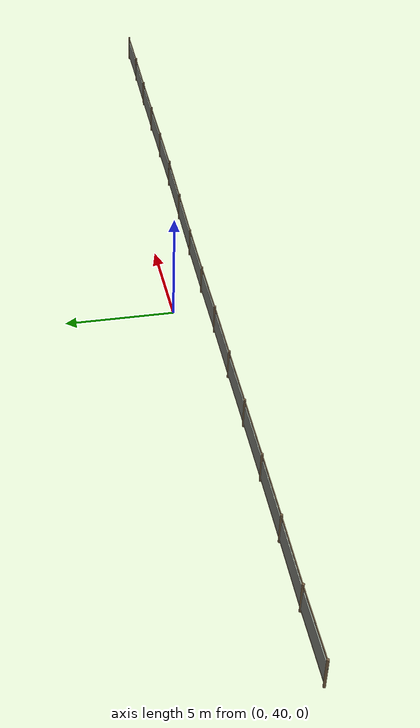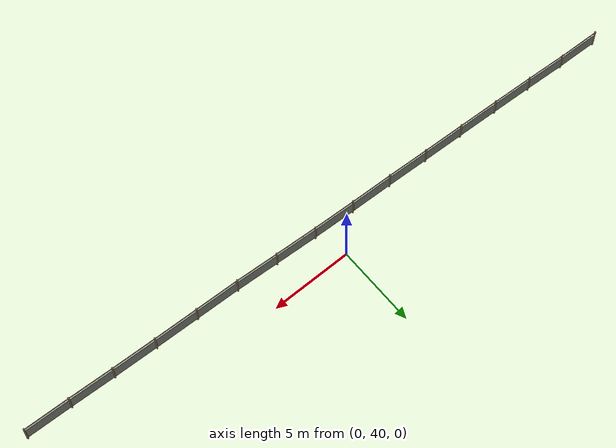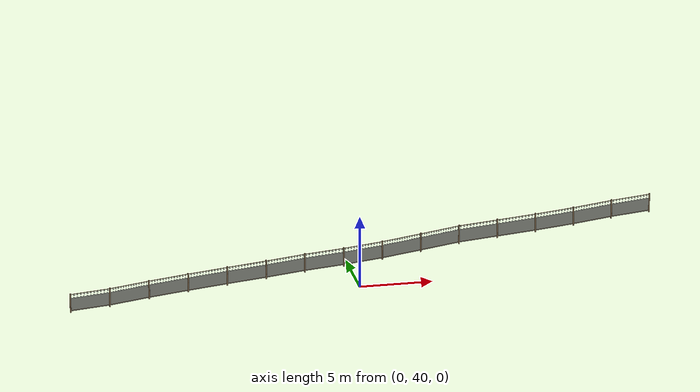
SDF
<sdf version="1.9">
 <world name="orchard_10x41">
  <model name="fence_N">
   <static>true</static>
   <link name="link">
    <visual name="post_1">
     <pose>-19.750 39.000 0.771 0.0000 0.0000 0.0000</pose>
     <geometry><cylinder><radius>0.0500</radius><length>1.3500</length></cylinder></geometry>
     <material>
      <ambient>0.420 0.340 0.240 1</ambient>
      <diffuse>0.462 0.374 0.264 1</diffuse>
      <specular>0.126 0.102 0.072 1</specular>
     </material>
     <plugin filename="gz-sim-label-system" name="gz::sim::systems::Label"><label>60</label></plugin>
    </visual>
    <visual name="post_2">
     <pose>-17.117 39.000 0.981 0.0000 0.0000 0.0000</pose>
     <geometry><cylinder><radius>0.0500</radius><length>1.3500</length></cylinder></geometry>
     <material>
      <ambient>0.420 0.340 0.240 1</ambient>
      <diffuse>0.462 0.374 0.264 1</diffuse>
      <specular>0.126 0.102 0.072 1</specular>
     </material>
     <plugin filename="gz-sim-label-system" name="gz::sim::systems::Label"><label>60</label></plugin>
    </visual>
    <visual name="post_3">
     <pose>-14.483 39.000 1.320 0.0000 0.0000 0.0000</pose>
     <geometry><cylinder><radius>0.0500</radius><length>1.3500</length></cylinder></geometry>
     <material>
      <ambient>0.420 0.340 0.240 1</ambient>
      <diffuse>0.462 0.374 0.264 1</diffuse>
      <specular>0.126 0.102 0.072 1</specular>
     </material>
     <plugin filename="gz-sim-label-system" name="gz::sim::systems::Label"><label>60</label></plugin>
    </visual>
    <visual name="post_4">
     <pose>-11.850 39.000 1.615 0.0000 0.0000 0.0000</pose>
     <geometry><cylinder><radius>0.0500</radius><length>1.3500</length></cylinder></geometry>
     <material>
      <ambient>0.420 0.340 0.240 1</ambient>
      <diffuse>0.462 0.374 0.264 1</diffuse>
      <specular>0.126 0.102 0.072 1</specular>
     </material>
     <plugin filename="gz-sim-label-system" name="gz::sim::systems::Label"><label>60</label></plugin>
    </visual>
    <visual name="post_5">
     <pose>-9.217 39.000 1.884 0.0000 0.0000 0.0000</pose>
     <geometry><cylinder><radius>0.0500</radius><length>1.3500</length></cylinder></geometry>
     <material>
      <ambient>0.420 0.340 0.240 1</ambient>
      <diffuse>0.462 0.374 0.264 1</diffuse>
      <specular>0.126 0.102 0.072 1</specular>
     </material>
     <plugin filename="gz-sim-label-system" name="gz::sim::systems::Label"><label>60</label></plugin>
    </visual>
    <visual name="post_6">
     <pose>-6.583 39.000 2.142 0.0000 0.0000 0.0000</pose>
     <geometry><cylinder><radius>0.0500</radius><length>1.3500</length></cylinder></geometry>
     <material>
      <ambient>0.420 0.340 0.240 1</ambient>
      <diffuse>0.462 0.374 0.264 1</diffuse>
      <specular>0.126 0.102 0.072 1</specular>
     </material>
     <plugin filename="gz-sim-label-system" name="gz::sim::systems::Label"><label>60</label></plugin>
    </visual>
    <visual name="post_7">
     <pose>-3.950 39.000 2.425 0.0000 0.0000 0.0000</pose>
     <geometry><cylinder><radius>0.0500</radius><length>1.3500</length></cylinder></geometry>
     <material>
      <ambient>0.420 0.340 0.240 1</ambient>
      <diffuse>0.462 0.374 0.264 1</diffuse>
      <specular>0.126 0.102 0.072 1</specular>
     </material>
     <plugin filename="gz-sim-label-system" name="gz::sim::systems::Label"><label>60</label></plugin>
    </visual>
    <visual name="post_8">
     <pose>-1.317 39.000 2.643 0.0000 0.0000 0.0000</pose>
     <geometry><cylinder><radius>0.0500</radius><length>1.3500</length></cylinder></geometry>
     <material>
      <ambient>0.420 0.340 0.240 1</ambient>
      <diffuse>0.462 0.374 0.264 1</diffuse>
      <specular>0.126 0.102 0.072 1</specular>
     </material>
     <plugin filename="gz-sim-label-system" name="gz::sim::systems::Label"><label>60</label></plugin>
    </visual>
    <visual name="post_9">
     <pose>1.317 39.000 2.926 0.0000 0.0000 0.0000</pose>
     <geometry><cylinder><radius>0.0500</radius><length>1.3500</length></cylinder></geometry>
     <material>
      <ambient>0.420 0.340 0.240 1</ambient>
      <diffuse>0.462 0.374 0.264 1</diffuse>
      <specular>0.126 0.102 0.072 1</specular>
     </material>
     <plugin filename="gz-sim-label-system" name="gz::sim::systems::Label"><label>60</label></plugin>
    </visual>
    <visual name="post_10">
     <pose>3.950 39.000 3.288 0.0000 0.0000 0.0000</pose>
     <geometry><cylinder><radius>0.0500</radius><length>1.3500</length></cylinder></geometry>
     <material>
      <ambient>0.420 0.340 0.240 1</ambient>
      <diffuse>0.462 0.374 0.264 1</diffuse>
      <specular>0.126 0.102 0.072 1</specular>
     </material>
     <plugin filename="gz-sim-label-system" name="gz::sim::systems::Label"><label>60</label></plugin>
    </visual>
    <visual name="post_11">
     <pose>6.583 39.000 3.663 0.0000 0.0000 0.0000</pose>
     <geometry><cylinder><radius>0.0500</radius><length>1.3500</length></cylinder></geometry>
     <material>
      <ambient>0.420 0.340 0.240 1</ambient>
      <diffuse>0.462 0.374 0.264 1</diffuse>
      <specular>0.126 0.102 0.072 1</specular>
     </material>
     <plugin filename="gz-sim-label-system" name="gz::sim::systems::Label"><label>60</label></plugin>
    </visual>
    <visual name="post_12">
     <pose>9.217 39.000 3.890 0.0000 0.0000 0.0000</pose>
     <geometry><cylinder><radius>0.0500</radius><length>1.3500</length></cylinder></geometry>
     <material>
      <ambient>0.420 0.340 0.240 1</ambient>
      <diffuse>0.462 0.374 0.264 1</diffuse>
      <specular>0.126 0.102 0.072 1</specular>
     </material>
     <plugin filename="gz-sim-label-system" name="gz::sim::systems::Label"><label>60</label></plugin>
    </visual>
    <visual name="post_13">
     <pose>11.850 39.000 4.118 0.0000 0.0000 0.0000</pose>
     <geometry><cylinder><radius>0.0500</radius><length>1.3500</length></cylinder></geometry>
     <material>
      <ambient>0.420 0.340 0.240 1</ambient>
      <diffuse>0.462 0.374 0.264 1</diffuse>
      <specular>0.126 0.102 0.072 1</specular>
     </material>
     <plugin filename="gz-sim-label-system" name="gz::sim::systems::Label"><label>60</label></plugin>
    </visual>
    <visual name="post_14">
     <pose>14.483 39.000 4.386 0.0000 0.0000 0.0000</pose>
     <geometry><cylinder><radius>0.0500</radius><length>1.3500</length></cylinder></geometry>
     <material>
      <ambient>0.420 0.340 0.240 1</ambient>
      <diffuse>0.462 0.374 0.264 1</diffuse>
      <specular>0.126 0.102 0.072 1</specular>
     </material>
     <plugin filename="gz-sim-label-system" name="gz::sim::systems::Label"><label>60</label></plugin>
    </visual>
    <visual name="post_15">
     <pose>17.117 39.000 4.710 0.0000 0.0000 0.0000</pose>
     <geometry><cylinder><radius>0.0500</radius><length>1.3500</length></cylinder></geometry>
     <material>
      <ambient>0.420 0.340 0.240 1</ambient>
      <diffuse>0.462 0.374 0.264 1</diffuse>
      <specular>0.126 0.102 0.072 1</specular>
     </material>
     <plugin filename="gz-sim-label-system" name="gz::sim::systems::Label"><label>60</label></plugin>
    </visual>
    <visual name="post_16">
     <pose>19.750 39.000 4.969 0.0000 0.0000 0.0000</pose>
     <geometry><cylinder><radius>0.0500</radius><length>1.3500</length></cylinder></geometry>
     <material>
      <ambient>0.420 0.340 0.240 1</ambient>
      <diffuse>0.462 0.374 0.264 1</diffuse>
      <specular>0.126 0.102 0.072 1</specular>
     </material>
     <plugin filename="gz-sim-label-system" name="gz::sim::systems::Label"><label>60</label></plugin>
    </visual>
    <visual name="mesh_17">
     <pose>-18.433 39.000 0.751 0.0000 -0.0799 0.0000</pose>
     <geometry><box><size>2.6860 0.0200 0.9000</size></box></geometry>
     <material>
      <ambient>0.460 0.470 0.440 1</ambient>
      <diffuse>0.506 0.517 0.484 1</diffuse>
      <specular>0.138 0.141 0.132 1</specular>
     </material>
     <plugin filename="gz-sim-label-system" name="gz::sim::systems::Label"><label>60</label></plugin>
    </visual>
    <visual name="rail_18">
     <pose>-18.433 39.000 0.351 0.0000 -0.0799 0.0000</pose>
     <geometry><box><size>2.6860 0.0350 0.0350</size></box></geometry>
     <material>
      <ambient>0.380 0.310 0.220 1</ambient>
      <diffuse>0.418 0.341 0.242 1</diffuse>
      <specular>0.114 0.093 0.066 1</specular>
     </material>
     <plugin filename="gz-sim-label-system" name="gz::sim::systems::Label"><label>60</label></plugin>
    </visual>
    <visual name="rail_19">
     <pose>-18.433 39.000 1.481 0.0000 -0.0799 0.0000</pose>
     <geometry><box><size>2.6860 0.0350 0.0350</size></box></geometry>
     <material>
      <ambient>0.380 0.310 0.220 1</ambient>
      <diffuse>0.418 0.341 0.242 1</diffuse>
      <specular>0.114 0.093 0.066 1</specular>
     </material>
     <plugin filename="gz-sim-label-system" name="gz::sim::systems::Label"><label>60</label></plugin>
    </visual>
    <visual name="wire_20">
     <pose>-18.433 39.000 1.251 0.0000 -0.0799 0.0000</pose>
     <geometry><box><size>2.6860 0.0120 0.0120</size></box></geometry>
     <material>
      <ambient>0.300 0.300 0.320 1</ambient>
      <diffuse>0.330 0.330 0.352 1</diffuse>
      <specular>0.090 0.090 0.096 1</specular>
     </material>
     <plugin filename="gz-sim-label-system" name="gz::sim::systems::Label"><label>60</label></plugin>
    </visual>
    <visual name="wire_21">
     <pose>-18.433 39.000 1.391 0.0000 -0.0799 0.0000</pose>
     <geometry><box><size>2.6860 0.0120 0.0120</size></box></geometry>
     <material>
      <ambient>0.300 0.300 0.320 1</ambient>
      <diffuse>0.330 0.330 0.352 1</diffuse>
      <specular>0.090 0.090 0.096 1</specular>
     </material>
     <plugin filename="gz-sim-label-system" name="gz::sim::systems::Label"><label>60</label></plugin>
    </visual>
    <visual name="mesh_22">
     <pose>-15.800 39.000 1.026 0.0000 -0.1278 0.0000</pose>
     <geometry><box><size>2.6860 0.0200 0.9000</size></box></geometry>
     <material>
      <ambient>0.460 0.470 0.440 1</ambient>
      <diffuse>0.506 0.517 0.484 1</diffuse>
      <specular>0.138 0.141 0.132 1</specular>
     </material>
     <plugin filename="gz-sim-label-system" name="gz::sim::systems::Label"><label>60</label></plugin>
    </visual>
    <visual name="rail_23">
     <pose>-15.800 39.000 0.626 0.0000 -0.1278 0.0000</pose>
     <geometry><box><size>2.6860 0.0350 0.0350</size></box></geometry>
     <material>
      <ambient>0.380 0.310 0.220 1</ambient>
      <diffuse>0.418 0.341 0.242 1</diffuse>
      <specular>0.114 0.093 0.066 1</specular>
     </material>
     <plugin filename="gz-sim-label-system" name="gz::sim::systems::Label"><label>60</label></plugin>
    </visual>
    <visual name="rail_24">
     <pose>-15.800 39.000 1.756 0.0000 -0.1278 0.0000</pose>
     <geometry><box><size>2.6860 0.0350 0.0350</size></box></geometry>
     <material>
      <ambient>0.380 0.310 0.220 1</ambient>
      <diffuse>0.418 0.341 0.242 1</diffuse>
      <specular>0.114 0.093 0.066 1</specular>
     </material>
     <plugin filename="gz-sim-label-system" name="gz::sim::systems::Label"><label>60</label></plugin>
    </visual>
    <visual name="wire_25">
     <pose>-15.800 39.000 1.526 0.0000 -0.1278 0.0000</pose>
     <geometry><box><size>2.6860 0.0120 0.0120</size></box></geometry>
     <material>
      <ambient>0.300 0.300 0.320 1</ambient>
      <diffuse>0.330 0.330 0.352 1</diffuse>
      <specular>0.090 0.090 0.096 1</specular>
     </material>
     <plugin filename="gz-sim-label-system" name="gz::sim::systems::Label"><label>60</label></plugin>
    </visual>
    <visual name="wire_26">
     <pose>-15.800 39.000 1.666 0.0000 -0.1278 0.0000</pose>
     <geometry><box><size>2.6860 0.0120 0.0120</size></box></geometry>
     <material>
      <ambient>0.300 0.300 0.320 1</ambient>
      <diffuse>0.330 0.330 0.352 1</diffuse>
      <specular>0.090 0.090 0.096 1</specular>
     </material>
     <plugin filename="gz-sim-label-system" name="gz::sim::systems::Label"><label>60</label></plugin>
    </visual>
    <visual name="mesh_27">
     <pose>-13.167 39.000 1.343 0.0000 -0.1117 0.0000</pose>
     <geometry><box><size>2.6860 0.0200 0.9000</size></box></geometry>
     <material>
      <ambient>0.460 0.470 0.440 1</ambient>
      <diffuse>0.506 0.517 0.484 1</diffuse>
      <specular>0.138 0.141 0.132 1</specular>
     </material>
     <plugin filename="gz-sim-label-system" name="gz::sim::systems::Label"><label>60</label></plugin>
    </visual>
    <visual name="rail_28">
     <pose>-13.167 39.000 0.943 0.0000 -0.1117 0.0000</pose>
     <geometry><box><size>2.6860 0.0350 0.0350</size></box></geometry>
     <material>
      <ambient>0.380 0.310 0.220 1</ambient>
      <diffuse>0.418 0.341 0.242 1</diffuse>
      <specular>0.114 0.093 0.066 1</specular>
     </material>
     <plugin filename="gz-sim-label-system" name="gz::sim::systems::Label"><label>60</label></plugin>
    </visual>
    <visual name="rail_29">
     <pose>-13.167 39.000 2.073 0.0000 -0.1117 0.0000</pose>
     <geometry><box><size>2.6860 0.0350 0.0350</size></box></geometry>
     <material>
      <ambient>0.380 0.310 0.220 1</ambient>
      <diffuse>0.418 0.341 0.242 1</diffuse>
      <specular>0.114 0.093 0.066 1</specular>
     </material>
     <plugin filename="gz-sim-label-system" name="gz::sim::systems::Label"><label>60</label></plugin>
    </visual>
    <visual name="wire_30">
     <pose>-13.167 39.000 1.843 0.0000 -0.1117 0.0000</pose>
     <geometry><box><size>2.6860 0.0120 0.0120</size></box></geometry>
     <material>
      <ambient>0.300 0.300 0.320 1</ambient>
      <diffuse>0.330 0.330 0.352 1</diffuse>
      <specular>0.090 0.090 0.096 1</specular>
     </material>
     <plugin filename="gz-sim-label-system" name="gz::sim::systems::Label"><label>60</label></plugin>
    </visual>
    <visual name="wire_31">
     <pose>-13.167 39.000 1.983 0.0000 -0.1117 0.0000</pose>
     <geometry><box><size>2.6860 0.0120 0.0120</size></box></geometry>
     <material>
      <ambient>0.300 0.300 0.320 1</ambient>
      <diffuse>0.330 0.330 0.352 1</diffuse>
      <specular>0.090 0.090 0.096 1</specular>
     </material>
     <plugin filename="gz-sim-label-system" name="gz::sim::systems::Label"><label>60</label></plugin>
    </visual>
    <visual name="mesh_32">
     <pose>-10.533 39.000 1.625 0.0000 -0.1019 0.0000</pose>
     <geometry><box><size>2.6860 0.0200 0.9000</size></box></geometry>
     <material>
      <ambient>0.460 0.470 0.440 1</ambient>
      <diffuse>0.506 0.517 0.484 1</diffuse>
      <specular>0.138 0.141 0.132 1</specular>
     </material>
     <plugin filename="gz-sim-label-system" name="gz::sim::systems::Label"><label>60</label></plugin>
    </visual>
    <visual name="rail_33">
     <pose>-10.533 39.000 1.225 0.0000 -0.1019 0.0000</pose>
     <geometry><box><size>2.6860 0.0350 0.0350</size></box></geometry>
     <material>
      <ambient>0.380 0.310 0.220 1</ambient>
      <diffuse>0.418 0.341 0.242 1</diffuse>
      <specular>0.114 0.093 0.066 1</specular>
     </material>
     <plugin filename="gz-sim-label-system" name="gz::sim::systems::Label"><label>60</label></plugin>
    </visual>
    <visual name="rail_34">
     <pose>-10.533 39.000 2.355 0.0000 -0.1019 0.0000</pose>
     <geometry><box><size>2.6860 0.0350 0.0350</size></box></geometry>
     <material>
      <ambient>0.380 0.310 0.220 1</ambient>
      <diffuse>0.418 0.341 0.242 1</diffuse>
      <specular>0.114 0.093 0.066 1</specular>
     </material>
     <plugin filename="gz-sim-label-system" name="gz::sim::systems::Label"><label>60</label></plugin>
    </visual>
    <visual name="wire_35">
     <pose>-10.533 39.000 2.125 0.0000 -0.1019 0.0000</pose>
     <geometry><box><size>2.6860 0.0120 0.0120</size></box></geometry>
     <material>
      <ambient>0.300 0.300 0.320 1</ambient>
      <diffuse>0.330 0.330 0.352 1</diffuse>
      <specular>0.090 0.090 0.096 1</specular>
     </material>
     <plugin filename="gz-sim-label-system" name="gz::sim::systems::Label"><label>60</label></plugin>
    </visual>
    <visual name="wire_36">
     <pose>-10.533 39.000 2.265 0.0000 -0.1019 0.0000</pose>
     <geometry><box><size>2.6860 0.0120 0.0120</size></box></geometry>
     <material>
      <ambient>0.300 0.300 0.320 1</ambient>
      <diffuse>0.330 0.330 0.352 1</diffuse>
      <specular>0.090 0.090 0.096 1</specular>
     </material>
     <plugin filename="gz-sim-label-system" name="gz::sim::systems::Label"><label>60</label></plugin>
    </visual>
    <visual name="mesh_37">
     <pose>-7.900 39.000 1.888 0.0000 -0.0974 0.0000</pose>
     <geometry><box><size>2.6860 0.0200 0.9000</size></box></geometry>
     <material>
      <ambient>0.460 0.470 0.440 1</ambient>
      <diffuse>0.506 0.517 0.484 1</diffuse>
      <specular>0.138 0.141 0.132 1</specular>
     </material>
     <plugin filename="gz-sim-label-system" name="gz::sim::systems::Label"><label>60</label></plugin>
    </visual>
    <visual name="rail_38">
     <pose>-7.900 39.000 1.488 0.0000 -0.0974 0.0000</pose>
     <geometry><box><size>2.6860 0.0350 0.0350</size></box></geometry>
     <material>
      <ambient>0.380 0.310 0.220 1</ambient>
      <diffuse>0.418 0.341 0.242 1</diffuse>
      <specular>0.114 0.093 0.066 1</specular>
     </material>
     <plugin filename="gz-sim-label-system" name="gz::sim::systems::Label"><label>60</label></plugin>
    </visual>
    <visual name="rail_39">
     <pose>-7.900 39.000 2.618 0.0000 -0.0974 0.0000</pose>
     <geometry><box><size>2.6860 0.0350 0.0350</size></box></geometry>
     <material>
      <ambient>0.380 0.310 0.220 1</ambient>
      <diffuse>0.418 0.341 0.242 1</diffuse>
      <specular>0.114 0.093 0.066 1</specular>
     </material>
     <plugin filename="gz-sim-label-system" name="gz::sim::systems::Label"><label>60</label></plugin>
    </visual>
    <visual name="wire_40">
     <pose>-7.900 39.000 2.388 0.0000 -0.0974 0.0000</pose>
     <geometry><box><size>2.6860 0.0120 0.0120</size></box></geometry>
     <material>
      <ambient>0.300 0.300 0.320 1</ambient>
      <diffuse>0.330 0.330 0.352 1</diffuse>
      <specular>0.090 0.090 0.096 1</specular>
     </material>
     <plugin filename="gz-sim-label-system" name="gz::sim::systems::Label"><label>60</label></plugin>
    </visual>
    <visual name="wire_41">
     <pose>-7.900 39.000 2.528 0.0000 -0.0974 0.0000</pose>
     <geometry><box><size>2.6860 0.0120 0.0120</size></box></geometry>
     <material>
      <ambient>0.300 0.300 0.320 1</ambient>
      <diffuse>0.330 0.330 0.352 1</diffuse>
      <specular>0.090 0.090 0.096 1</specular>
     </material>
     <plugin filename="gz-sim-label-system" name="gz::sim::systems::Label"><label>60</label></plugin>
    </visual>
    <visual name="mesh_42">
     <pose>-5.267 39.000 2.158 0.0000 -0.1071 0.0000</pose>
     <geometry><box><size>2.6860 0.0200 0.9000</size></box></geometry>
     <material>
      <ambient>0.460 0.470 0.440 1</ambient>
      <diffuse>0.506 0.517 0.484 1</diffuse>
      <specular>0.138 0.141 0.132 1</specular>
     </material>
     <plugin filename="gz-sim-label-system" name="gz::sim::systems::Label"><label>60</label></plugin>
    </visual>
    <visual name="rail_43">
     <pose>-5.267 39.000 1.758 0.0000 -0.1071 0.0000</pose>
     <geometry><box><size>2.6860 0.0350 0.0350</size></box></geometry>
     <material>
      <ambient>0.380 0.310 0.220 1</ambient>
      <diffuse>0.418 0.341 0.242 1</diffuse>
      <specular>0.114 0.093 0.066 1</specular>
     </material>
     <plugin filename="gz-sim-label-system" name="gz::sim::systems::Label"><label>60</label></plugin>
    </visual>
    <visual name="rail_44">
     <pose>-5.267 39.000 2.888 0.0000 -0.1071 0.0000</pose>
     <geometry><box><size>2.6860 0.0350 0.0350</size></box></geometry>
     <material>
      <ambient>0.380 0.310 0.220 1</ambient>
      <diffuse>0.418 0.341 0.242 1</diffuse>
      <specular>0.114 0.093 0.066 1</specular>
     </material>
     <plugin filename="gz-sim-label-system" name="gz::sim::systems::Label"><label>60</label></plugin>
    </visual>
    <visual name="wire_45">
     <pose>-5.267 39.000 2.658 0.0000 -0.1071 0.0000</pose>
     <geometry><box><size>2.6860 0.0120 0.0120</size></box></geometry>
     <material>
      <ambient>0.300 0.300 0.320 1</ambient>
      <diffuse>0.330 0.330 0.352 1</diffuse>
      <specular>0.090 0.090 0.096 1</specular>
     </material>
     <plugin filename="gz-sim-label-system" name="gz::sim::systems::Label"><label>60</label></plugin>
    </visual>
    <visual name="wire_46">
     <pose>-5.267 39.000 2.798 0.0000 -0.1071 0.0000</pose>
     <geometry><box><size>2.6860 0.0120 0.0120</size></box></geometry>
     <material>
      <ambient>0.300 0.300 0.320 1</ambient>
      <diffuse>0.330 0.330 0.352 1</diffuse>
      <specular>0.090 0.090 0.096 1</specular>
     </material>
     <plugin filename="gz-sim-label-system" name="gz::sim::systems::Label"><label>60</label></plugin>
    </visual>
    <visual name="mesh_47">
     <pose>-2.633 39.000 2.409 0.0000 -0.0827 0.0000</pose>
     <geometry><box><size>2.6860 0.0200 0.9000</size></box></geometry>
     <material>
      <ambient>0.460 0.470 0.440 1</ambient>
      <diffuse>0.506 0.517 0.484 1</diffuse>
      <specular>0.138 0.141 0.132 1</specular>
     </material>
     <plugin filename="gz-sim-label-system" name="gz::sim::systems::Label"><label>60</label></plugin>
    </visual>
    <visual name="rail_48">
     <pose>-2.633 39.000 2.009 0.0000 -0.0827 0.0000</pose>
     <geometry><box><size>2.6860 0.0350 0.0350</size></box></geometry>
     <material>
      <ambient>0.380 0.310 0.220 1</ambient>
      <diffuse>0.418 0.341 0.242 1</diffuse>
      <specular>0.114 0.093 0.066 1</specular>
     </material>
     <plugin filename="gz-sim-label-system" name="gz::sim::systems::Label"><label>60</label></plugin>
    </visual>
    <visual name="rail_49">
     <pose>-2.633 39.000 3.139 0.0000 -0.0827 0.0000</pose>
     <geometry><box><size>2.6860 0.0350 0.0350</size></box></geometry>
     <material>
      <ambient>0.380 0.310 0.220 1</ambient>
      <diffuse>0.418 0.341 0.242 1</diffuse>
      <specular>0.114 0.093 0.066 1</specular>
     </material>
     <plugin filename="gz-sim-label-system" name="gz::sim::systems::Label"><label>60</label></plugin>
    </visual>
    <visual name="wire_50">
     <pose>-2.633 39.000 2.909 0.0000 -0.0827 0.0000</pose>
     <geometry><box><size>2.6860 0.0120 0.0120</size></box></geometry>
     <material>
      <ambient>0.300 0.300 0.320 1</ambient>
      <diffuse>0.330 0.330 0.352 1</diffuse>
      <specular>0.090 0.090 0.096 1</specular>
     </material>
     <plugin filename="gz-sim-label-system" name="gz::sim::systems::Label"><label>60</label></plugin>
    </visual>
    <visual name="wire_51">
     <pose>-2.633 39.000 3.049 0.0000 -0.0827 0.0000</pose>
     <geometry><box><size>2.6860 0.0120 0.0120</size></box></geometry>
     <material>
      <ambient>0.300 0.300 0.320 1</ambient>
      <diffuse>0.330 0.330 0.352 1</diffuse>
      <specular>0.090 0.090 0.096 1</specular>
     </material>
     <plugin filename="gz-sim-label-system" name="gz::sim::systems::Label"><label>60</label></plugin>
    </visual>
    <visual name="mesh_52">
     <pose>0.000 39.000 2.659 0.0000 -0.1069 0.0000</pose>
     <geometry><box><size>2.6860 0.0200 0.9000</size></box></geometry>
     <material>
      <ambient>0.460 0.470 0.440 1</ambient>
      <diffuse>0.506 0.517 0.484 1</diffuse>
      <specular>0.138 0.141 0.132 1</specular>
     </material>
     <plugin filename="gz-sim-label-system" name="gz::sim::systems::Label"><label>60</label></plugin>
    </visual>
    <visual name="rail_53">
     <pose>0.000 39.000 2.259 0.0000 -0.1069 0.0000</pose>
     <geometry><box><size>2.6860 0.0350 0.0350</size></box></geometry>
     <material>
      <ambient>0.380 0.310 0.220 1</ambient>
      <diffuse>0.418 0.341 0.242 1</diffuse>
      <specular>0.114 0.093 0.066 1</specular>
     </material>
     <plugin filename="gz-sim-label-system" name="gz::sim::systems::Label"><label>60</label></plugin>
    </visual>
    <visual name="rail_54">
     <pose>0.000 39.000 3.389 0.0000 -0.1069 0.0000</pose>
     <geometry><box><size>2.6860 0.0350 0.0350</size></box></geometry>
     <material>
      <ambient>0.380 0.310 0.220 1</ambient>
      <diffuse>0.418 0.341 0.242 1</diffuse>
      <specular>0.114 0.093 0.066 1</specular>
     </material>
     <plugin filename="gz-sim-label-system" name="gz::sim::systems::Label"><label>60</label></plugin>
    </visual>
    <visual name="wire_55">
     <pose>0.000 39.000 3.159 0.0000 -0.1069 0.0000</pose>
     <geometry><box><size>2.6860 0.0120 0.0120</size></box></geometry>
     <material>
      <ambient>0.300 0.300 0.320 1</ambient>
      <diffuse>0.330 0.330 0.352 1</diffuse>
      <specular>0.090 0.090 0.096 1</specular>
     </material>
     <plugin filename="gz-sim-label-system" name="gz::sim::systems::Label"><label>60</label></plugin>
    </visual>
    <visual name="wire_56">
     <pose>0.000 39.000 3.299 0.0000 -0.1069 0.0000</pose>
     <geometry><box><size>2.6860 0.0120 0.0120</size></box></geometry>
     <material>
      <ambient>0.300 0.300 0.320 1</ambient>
      <diffuse>0.330 0.330 0.352 1</diffuse>
      <specular>0.090 0.090 0.096 1</specular>
     </material>
     <plugin filename="gz-sim-label-system" name="gz::sim::systems::Label"><label>60</label></plugin>
    </visual>
    <visual name="mesh_57">
     <pose>2.633 39.000 2.982 0.0000 -0.1367 0.0000</pose>
     <geometry><box><size>2.6860 0.0200 0.9000</size></box></geometry>
     <material>
      <ambient>0.460 0.470 0.440 1</ambient>
      <diffuse>0.506 0.517 0.484 1</diffuse>
      <specular>0.138 0.141 0.132 1</specular>
     </material>
     <plugin filename="gz-sim-label-system" name="gz::sim::systems::Label"><label>60</label></plugin>
    </visual>
    <visual name="rail_58">
     <pose>2.633 39.000 2.582 0.0000 -0.1367 0.0000</pose>
     <geometry><box><size>2.6860 0.0350 0.0350</size></box></geometry>
     <material>
      <ambient>0.380 0.310 0.220 1</ambient>
      <diffuse>0.418 0.341 0.242 1</diffuse>
      <specular>0.114 0.093 0.066 1</specular>
     </material>
     <plugin filename="gz-sim-label-system" name="gz::sim::systems::Label"><label>60</label></plugin>
    </visual>
    <visual name="rail_59">
     <pose>2.633 39.000 3.712 0.0000 -0.1367 0.0000</pose>
     <geometry><box><size>2.6860 0.0350 0.0350</size></box></geometry>
     <material>
      <ambient>0.380 0.310 0.220 1</ambient>
      <diffuse>0.418 0.341 0.242 1</diffuse>
      <specular>0.114 0.093 0.066 1</specular>
     </material>
     <plugin filename="gz-sim-label-system" name="gz::sim::systems::Label"><label>60</label></plugin>
    </visual>
    <visual name="wire_60">
     <pose>2.633 39.000 3.482 0.0000 -0.1367 0.0000</pose>
     <geometry><box><size>2.6860 0.0120 0.0120</size></box></geometry>
     <material>
      <ambient>0.300 0.300 0.320 1</ambient>
      <diffuse>0.330 0.330 0.352 1</diffuse>
      <specular>0.090 0.090 0.096 1</specular>
     </material>
     <plugin filename="gz-sim-label-system" name="gz::sim::systems::Label"><label>60</label></plugin>
    </visual>
    <visual name="wire_61">
     <pose>2.633 39.000 3.622 0.0000 -0.1367 0.0000</pose>
     <geometry><box><size>2.6860 0.0120 0.0120</size></box></geometry>
     <material>
      <ambient>0.300 0.300 0.320 1</ambient>
      <diffuse>0.330 0.330 0.352 1</diffuse>
      <specular>0.090 0.090 0.096 1</specular>
     </material>
     <plugin filename="gz-sim-label-system" name="gz::sim::systems::Label"><label>60</label></plugin>
    </visual>
    <visual name="mesh_62">
     <pose>5.267 39.000 3.350 0.0000 -0.1416 0.0000</pose>
     <geometry><box><size>2.6860 0.0200 0.9000</size></box></geometry>
     <material>
      <ambient>0.460 0.470 0.440 1</ambient>
      <diffuse>0.506 0.517 0.484 1</diffuse>
      <specular>0.138 0.141 0.132 1</specular>
     </material>
     <plugin filename="gz-sim-label-system" name="gz::sim::systems::Label"><label>60</label></plugin>
    </visual>
    <visual name="rail_63">
     <pose>5.267 39.000 2.950 0.0000 -0.1416 0.0000</pose>
     <geometry><box><size>2.6860 0.0350 0.0350</size></box></geometry>
     <material>
      <ambient>0.380 0.310 0.220 1</ambient>
      <diffuse>0.418 0.341 0.242 1</diffuse>
      <specular>0.114 0.093 0.066 1</specular>
     </material>
     <plugin filename="gz-sim-label-system" name="gz::sim::systems::Label"><label>60</label></plugin>
    </visual>
    <visual name="rail_64">
     <pose>5.267 39.000 4.080 0.0000 -0.1416 0.0000</pose>
     <geometry><box><size>2.6860 0.0350 0.0350</size></box></geometry>
     <material>
      <ambient>0.380 0.310 0.220 1</ambient>
      <diffuse>0.418 0.341 0.242 1</diffuse>
      <specular>0.114 0.093 0.066 1</specular>
     </material>
     <plugin filename="gz-sim-label-system" name="gz::sim::systems::Label"><label>60</label></plugin>
    </visual>
    <visual name="wire_65">
     <pose>5.267 39.000 3.850 0.0000 -0.1416 0.0000</pose>
     <geometry><box><size>2.6860 0.0120 0.0120</size></box></geometry>
     <material>
      <ambient>0.300 0.300 0.320 1</ambient>
      <diffuse>0.330 0.330 0.352 1</diffuse>
      <specular>0.090 0.090 0.096 1</specular>
     </material>
     <plugin filename="gz-sim-label-system" name="gz::sim::systems::Label"><label>60</label></plugin>
    </visual>
    <visual name="wire_66">
     <pose>5.267 39.000 3.990 0.0000 -0.1416 0.0000</pose>
     <geometry><box><size>2.6860 0.0120 0.0120</size></box></geometry>
     <material>
      <ambient>0.300 0.300 0.320 1</ambient>
      <diffuse>0.330 0.330 0.352 1</diffuse>
      <specular>0.090 0.090 0.096 1</specular>
     </material>
     <plugin filename="gz-sim-label-system" name="gz::sim::systems::Label"><label>60</label></plugin>
    </visual>
    <visual name="mesh_67">
     <pose>7.900 39.000 3.652 0.0000 -0.0860 0.0000</pose>
     <geometry><box><size>2.6860 0.0200 0.9000</size></box></geometry>
     <material>
      <ambient>0.460 0.470 0.440 1</ambient>
      <diffuse>0.506 0.517 0.484 1</diffuse>
      <specular>0.138 0.141 0.132 1</specular>
     </material>
     <plugin filename="gz-sim-label-system" name="gz::sim::systems::Label"><label>60</label></plugin>
    </visual>
    <visual name="rail_68">
     <pose>7.900 39.000 3.252 0.0000 -0.0860 0.0000</pose>
     <geometry><box><size>2.6860 0.0350 0.0350</size></box></geometry>
     <material>
      <ambient>0.380 0.310 0.220 1</ambient>
      <diffuse>0.418 0.341 0.242 1</diffuse>
      <specular>0.114 0.093 0.066 1</specular>
     </material>
     <plugin filename="gz-sim-label-system" name="gz::sim::systems::Label"><label>60</label></plugin>
    </visual>
    <visual name="rail_69">
     <pose>7.900 39.000 4.382 0.0000 -0.0860 0.0000</pose>
     <geometry><box><size>2.6860 0.0350 0.0350</size></box></geometry>
     <material>
      <ambient>0.380 0.310 0.220 1</ambient>
      <diffuse>0.418 0.341 0.242 1</diffuse>
      <specular>0.114 0.093 0.066 1</specular>
     </material>
     <plugin filename="gz-sim-label-system" name="gz::sim::systems::Label"><label>60</label></plugin>
    </visual>
    <visual name="wire_70">
     <pose>7.900 39.000 4.152 0.0000 -0.0860 0.0000</pose>
     <geometry><box><size>2.6860 0.0120 0.0120</size></box></geometry>
     <material>
      <ambient>0.300 0.300 0.320 1</ambient>
      <diffuse>0.330 0.330 0.352 1</diffuse>
      <specular>0.090 0.090 0.096 1</specular>
     </material>
     <plugin filename="gz-sim-label-system" name="gz::sim::systems::Label"><label>60</label></plugin>
    </visual>
    <visual name="wire_71">
     <pose>7.900 39.000 4.292 0.0000 -0.0860 0.0000</pose>
     <geometry><box><size>2.6860 0.0120 0.0120</size></box></geometry>
     <material>
      <ambient>0.300 0.300 0.320 1</ambient>
      <diffuse>0.330 0.330 0.352 1</diffuse>
      <specular>0.090 0.090 0.096 1</specular>
     </material>
     <plugin filename="gz-sim-label-system" name="gz::sim::systems::Label"><label>60</label></plugin>
    </visual>
    <visual name="mesh_72">
     <pose>10.533 39.000 3.879 0.0000 -0.0863 0.0000</pose>
     <geometry><box><size>2.6860 0.0200 0.9000</size></box></geometry>
     <material>
      <ambient>0.460 0.470 0.440 1</ambient>
      <diffuse>0.506 0.517 0.484 1</diffuse>
      <specular>0.138 0.141 0.132 1</specular>
     </material>
     <plugin filename="gz-sim-label-system" name="gz::sim::systems::Label"><label>60</label></plugin>
    </visual>
    <visual name="rail_73">
     <pose>10.533 39.000 3.479 0.0000 -0.0863 0.0000</pose>
     <geometry><box><size>2.6860 0.0350 0.0350</size></box></geometry>
     <material>
      <ambient>0.380 0.310 0.220 1</ambient>
      <diffuse>0.418 0.341 0.242 1</diffuse>
      <specular>0.114 0.093 0.066 1</specular>
     </material>
     <plugin filename="gz-sim-label-system" name="gz::sim::systems::Label"><label>60</label></plugin>
    </visual>
    <visual name="rail_74">
     <pose>10.533 39.000 4.609 0.0000 -0.0863 0.0000</pose>
     <geometry><box><size>2.6860 0.0350 0.0350</size></box></geometry>
     <material>
      <ambient>0.380 0.310 0.220 1</ambient>
      <diffuse>0.418 0.341 0.242 1</diffuse>
      <specular>0.114 0.093 0.066 1</specular>
     </material>
     <plugin filename="gz-sim-label-system" name="gz::sim::systems::Label"><label>60</label></plugin>
    </visual>
    <visual name="wire_75">
     <pose>10.533 39.000 4.379 0.0000 -0.0863 0.0000</pose>
     <geometry><box><size>2.6860 0.0120 0.0120</size></box></geometry>
     <material>
      <ambient>0.300 0.300 0.320 1</ambient>
      <diffuse>0.330 0.330 0.352 1</diffuse>
      <specular>0.090 0.090 0.096 1</specular>
     </material>
     <plugin filename="gz-sim-label-system" name="gz::sim::systems::Label"><label>60</label></plugin>
    </visual>
    <visual name="wire_76">
     <pose>10.533 39.000 4.519 0.0000 -0.0863 0.0000</pose>
     <geometry><box><size>2.6860 0.0120 0.0120</size></box></geometry>
     <material>
      <ambient>0.300 0.300 0.320 1</ambient>
      <diffuse>0.330 0.330 0.352 1</diffuse>
      <specular>0.090 0.090 0.096 1</specular>
     </material>
     <plugin filename="gz-sim-label-system" name="gz::sim::systems::Label"><label>60</label></plugin>
    </visual>
    <visual name="mesh_77">
     <pose>13.167 39.000 4.127 0.0000 -0.1014 0.0000</pose>
     <geometry><box><size>2.6860 0.0200 0.9000</size></box></geometry>
     <material>
      <ambient>0.460 0.470 0.440 1</ambient>
      <diffuse>0.506 0.517 0.484 1</diffuse>
      <specular>0.138 0.141 0.132 1</specular>
     </material>
     <plugin filename="gz-sim-label-system" name="gz::sim::systems::Label"><label>60</label></plugin>
    </visual>
    <visual name="rail_78">
     <pose>13.167 39.000 3.727 0.0000 -0.1014 0.0000</pose>
     <geometry><box><size>2.6860 0.0350 0.0350</size></box></geometry>
     <material>
      <ambient>0.380 0.310 0.220 1</ambient>
      <diffuse>0.418 0.341 0.242 1</diffuse>
      <specular>0.114 0.093 0.066 1</specular>
     </material>
     <plugin filename="gz-sim-label-system" name="gz::sim::systems::Label"><label>60</label></plugin>
    </visual>
    <visual name="rail_79">
     <pose>13.167 39.000 4.857 0.0000 -0.1014 0.0000</pose>
     <geometry><box><size>2.6860 0.0350 0.0350</size></box></geometry>
     <material>
      <ambient>0.380 0.310 0.220 1</ambient>
      <diffuse>0.418 0.341 0.242 1</diffuse>
      <specular>0.114 0.093 0.066 1</specular>
     </material>
     <plugin filename="gz-sim-label-system" name="gz::sim::systems::Label"><label>60</label></plugin>
    </visual>
    <visual name="wire_80">
     <pose>13.167 39.000 4.627 0.0000 -0.1014 0.0000</pose>
     <geometry><box><size>2.6860 0.0120 0.0120</size></box></geometry>
     <material>
      <ambient>0.300 0.300 0.320 1</ambient>
      <diffuse>0.330 0.330 0.352 1</diffuse>
      <specular>0.090 0.090 0.096 1</specular>
     </material>
     <plugin filename="gz-sim-label-system" name="gz::sim::systems::Label"><label>60</label></plugin>
    </visual>
    <visual name="wire_81">
     <pose>13.167 39.000 4.767 0.0000 -0.1014 0.0000</pose>
     <geometry><box><size>2.6860 0.0120 0.0120</size></box></geometry>
     <material>
      <ambient>0.300 0.300 0.320 1</ambient>
      <diffuse>0.330 0.330 0.352 1</diffuse>
      <specular>0.090 0.090 0.096 1</specular>
     </material>
     <plugin filename="gz-sim-label-system" name="gz::sim::systems::Label"><label>60</label></plugin>
    </visual>
    <visual name="mesh_82">
     <pose>15.800 39.000 4.423 0.0000 -0.1226 0.0000</pose>
     <geometry><box><size>2.6860 0.0200 0.9000</size></box></geometry>
     <material>
      <ambient>0.460 0.470 0.440 1</ambient>
      <diffuse>0.506 0.517 0.484 1</diffuse>
      <specular>0.138 0.141 0.132 1</specular>
     </material>
     <plugin filename="gz-sim-label-system" name="gz::sim::systems::Label"><label>60</label></plugin>
    </visual>
    <visual name="rail_83">
     <pose>15.800 39.000 4.023 0.0000 -0.1226 0.0000</pose>
     <geometry><box><size>2.6860 0.0350 0.0350</size></box></geometry>
     <material>
      <ambient>0.380 0.310 0.220 1</ambient>
      <diffuse>0.418 0.341 0.242 1</diffuse>
      <specular>0.114 0.093 0.066 1</specular>
     </material>
     <plugin filename="gz-sim-label-system" name="gz::sim::systems::Label"><label>60</label></plugin>
    </visual>
    <visual name="rail_84">
     <pose>15.800 39.000 5.153 0.0000 -0.1226 0.0000</pose>
     <geometry><box><size>2.6860 0.0350 0.0350</size></box></geometry>
     <material>
      <ambient>0.380 0.310 0.220 1</ambient>
      <diffuse>0.418 0.341 0.242 1</diffuse>
      <specular>0.114 0.093 0.066 1</specular>
     </material>
     <plugin filename="gz-sim-label-system" name="gz::sim::systems::Label"><label>60</label></plugin>
    </visual>
    <visual name="wire_85">
     <pose>15.800 39.000 4.923 0.0000 -0.1226 0.0000</pose>
     <geometry><box><size>2.6860 0.0120 0.0120</size></box></geometry>
     <material>
      <ambient>0.300 0.300 0.320 1</ambient>
      <diffuse>0.330 0.330 0.352 1</diffuse>
      <specular>0.090 0.090 0.096 1</specular>
     </material>
     <plugin filename="gz-sim-label-system" name="gz::sim::systems::Label"><label>60</label></plugin>
    </visual>
    <visual name="wire_86">
     <pose>15.800 39.000 5.063 0.0000 -0.1226 0.0000</pose>
     <geometry><box><size>2.6860 0.0120 0.0120</size></box></geometry>
     <material>
      <ambient>0.300 0.300 0.320 1</ambient>
      <diffuse>0.330 0.330 0.352 1</diffuse>
      <specular>0.090 0.090 0.096 1</specular>
     </material>
     <plugin filename="gz-sim-label-system" name="gz::sim::systems::Label"><label>60</label></plugin>
    </visual>
    <visual name="mesh_87">
     <pose>18.433 39.000 4.714 0.0000 -0.0978 0.0000</pose>
     <geometry><box><size>2.6860 0.0200 0.9000</size></box></geometry>
     <material>
      <ambient>0.460 0.470 0.440 1</ambient>
      <diffuse>0.506 0.517 0.484 1</diffuse>
      <specular>0.138 0.141 0.132 1</specular>
     </material>
     <plugin filename="gz-sim-label-system" name="gz::sim::systems::Label"><label>60</label></plugin>
    </visual>
    <visual name="rail_88">
     <pose>18.433 39.000 4.314 0.0000 -0.0978 0.0000</pose>
     <geometry><box><size>2.6860 0.0350 0.0350</size></box></geometry>
     <material>
      <ambient>0.380 0.310 0.220 1</ambient>
      <diffuse>0.418 0.341 0.242 1</diffuse>
      <specular>0.114 0.093 0.066 1</specular>
     </material>
     <plugin filename="gz-sim-label-system" name="gz::sim::systems::Label"><label>60</label></plugin>
    </visual>
    <visual name="rail_89">
     <pose>18.433 39.000 5.444 0.0000 -0.0978 0.0000</pose>
     <geometry><box><size>2.6860 0.0350 0.0350</size></box></geometry>
     <material>
      <ambient>0.380 0.310 0.220 1</ambient>
      <diffuse>0.418 0.341 0.242 1</diffuse>
      <specular>0.114 0.093 0.066 1</specular>
     </material>
     <plugin filename="gz-sim-label-system" name="gz::sim::systems::Label"><label>60</label></plugin>
    </visual>
    <visual name="wire_90">
     <pose>18.433 39.000 5.214 0.0000 -0.0978 0.0000</pose>
     <geometry><box><size>2.6860 0.0120 0.0120</size></box></geometry>
     <material>
      <ambient>0.300 0.300 0.320 1</ambient>
      <diffuse>0.330 0.330 0.352 1</diffuse>
      <specular>0.090 0.090 0.096 1</specular>
     </material>
     <plugin filename="gz-sim-label-system" name="gz::sim::systems::Label"><label>60</label></plugin>
    </visual>
    <visual name="wire_91">
     <pose>18.433 39.000 5.354 0.0000 -0.0978 0.0000</pose>
     <geometry><box><size>2.6860 0.0120 0.0120</size></box></geometry>
     <material>
      <ambient>0.300 0.300 0.320 1</ambient>
      <diffuse>0.330 0.330 0.352 1</diffuse>
      <specular>0.090 0.090 0.096 1</specular>
     </material>
     <plugin filename="gz-sim-label-system" name="gz::sim::systems::Label"><label>60</label></plugin>
    </visual>
    <collision name="c0">
     <pose>-18.433 39.000 0.876 0.0000 -0.0799 0.0000</pose>
     <geometry><box><size>2.6333 0.0600 1.3500</size></box></geometry>
    </collision>
    <collision name="c1">
     <pose>-15.800 39.000 1.151 0.0000 -0.1278 0.0000</pose>
     <geometry><box><size>2.6333 0.0600 1.3500</size></box></geometry>
    </collision>
    <collision name="c2">
     <pose>-13.167 39.000 1.468 0.0000 -0.1117 0.0000</pose>
     <geometry><box><size>2.6333 0.0600 1.3500</size></box></geometry>
    </collision>
    <collision name="c3">
     <pose>-10.533 39.000 1.750 0.0000 -0.1019 0.0000</pose>
     <geometry><box><size>2.6333 0.0600 1.3500</size></box></geometry>
    </collision>
    <collision name="c4">
     <pose>-7.900 39.000 2.013 0.0000 -0.0974 0.0000</pose>
     <geometry><box><size>2.6333 0.0600 1.3500</size></box></geometry>
    </collision>
    <collision name="c5">
     <pose>-5.267 39.000 2.283 0.0000 -0.1071 0.0000</pose>
     <geometry><box><size>2.6333 0.0600 1.3500</size></box></geometry>
    </collision>
    <collision name="c6">
     <pose>-2.633 39.000 2.534 0.0000 -0.0827 0.0000</pose>
     <geometry><box><size>2.6333 0.0600 1.3500</size></box></geometry>
    </collision>
    <collision name="c7">
     <pose>0.000 39.000 2.784 0.0000 -0.1069 0.0000</pose>
     <geometry><box><size>2.6333 0.0600 1.3500</size></box></geometry>
    </collision>
    <collision name="c8">
     <pose>2.633 39.000 3.107 0.0000 -0.1367 0.0000</pose>
     <geometry><box><size>2.6333 0.0600 1.3500</size></box></geometry>
    </collision>
    <collision name="c9">
     <pose>5.267 39.000 3.475 0.0000 -0.1416 0.0000</pose>
     <geometry><box><size>2.6333 0.0600 1.3500</size></box></geometry>
    </collision>
    <collision name="c10">
     <pose>7.900 39.000 3.777 0.0000 -0.0860 0.0000</pose>
     <geometry><box><size>2.6333 0.0600 1.3500</size></box></geometry>
    </collision>
    <collision name="c11">
     <pose>10.533 39.000 4.004 0.0000 -0.0863 0.0000</pose>
     <geometry><box><size>2.6333 0.0600 1.3500</size></box></geometry>
    </collision>
    <collision name="c12">
     <pose>13.167 39.000 4.252 0.0000 -0.1014 0.0000</pose>
     <geometry><box><size>2.6333 0.0600 1.3500</size></box></geometry>
    </collision>
    <collision name="c13">
     <pose>15.800 39.000 4.548 0.0000 -0.1226 0.0000</pose>
     <geometry><box><size>2.6333 0.0600 1.3500</size></box></geometry>
    </collision>
    <collision name="c14">
     <pose>18.433 39.000 4.839 0.0000 -0.0978 0.0000</pose>
     <geometry><box><size>2.6333 0.0600 1.3500</size></box></geometry>
    </collision>
   </link>
  </model>
 </world>
</sdf>
